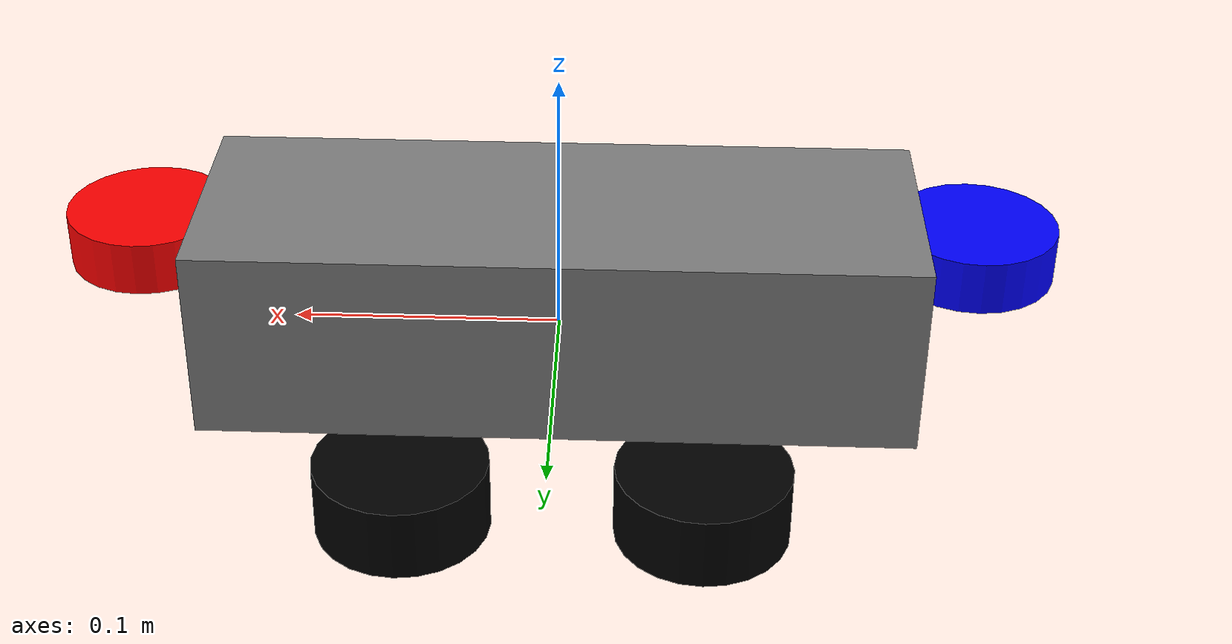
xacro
<?xml version="1.0"?>
<robot xmlns:xacro="http://www.ros.org/wiki/xacro" name="mi_robot">

  <!-- Reusable Properties -->
  <!-- Chassis-->
  <xacro:property name="chassis_xlength" value="0.265"/>
  <xacro:property name="chassis_ylength" value="0.094"/>
  <xacro:property name="chassis_zlength" value="0.073"/>
  <xacro:property name="chassis_mass" value="0.670"/>
  <xacro:property name="chassis_zOfffset" value="0.015"/>

  <!-- Backwards-compatible aliases for older property names -->
  <xacro:property name="chassis_length" value="${chassis_xlength}"/>
  <xacro:property name="chassis_width" value="${chassis_ylength}"/>
  <xacro:property name="chassis_height" value="${chassis_zlength}"/>
  <!-- keep both spellings of zOffset (original had a typo) -->
  <xacro:property name="chassis_zOffset" value="${chassis_zOfffset}"/>

  <!-- Wheels-->
  <xacro:property name="wheel_radius" value="0.0325"/>
  <xacro:property name="wheel_width" value="0.028"/>
  <xacro:property name="wheel_xoffset" value="0.055"/>
  <xacro:property name="wheel_yoffset" value="${chassis_ylength/2 + wheel_width/2}"/>
  <xacro:property name="wheel_mass" value="0.032"/>
  <xacro:property name="wheel_Izz" value="${0.5*wheel_mass*wheel_radius*wheel_radius}"/>
  <xacro:property name="wheel_Ixx" value="${(1.0/12.0)*wheel_mass*(3.0*wheel_radius*wheel_radius + wheel_width*wheel_width)}"/>
  <xacro:property name="wheel_Iyy" value="${wheel_Ixx}"/>
  <xacro:property name="wheel_Ixz" value="0"/>

  <!-- Constants (avoid redefining common symbols) -->

  <!-- Chasis -->
  <link name="base_link">
    <visual>
      <geometry>
        <box size="${chassis_xlength} ${chassis_ylength} ${chassis_zlength}"/>
      </geometry>
      <origin xyz="0 0 ${chassis_zOfffset}" rpy="0 0 0"/>
      <material name="gray"><color rgba="0.5 0.5 0.5 1"/></material>
    </visual>
    <collision>
      <geometry>
        <box size="${chassis_xlength} ${chassis_ylength} ${chassis_zlength}"/>
      </geometry>
      <origin xyz="0 0 ${chassis_zOfffset}" rpy="0 0 0"/>
    </collision>
    <inertial>
      <origin xyz="0 0 ${chassis_zOffset}" rpy="0 0 0"/>
      <mass value="${chassis_mass}"/>
      <inertia
        ixx="${chassis_mass*(chassis_ylength*chassis_ylength + chassis_zlength*chassis_zlength)/12.0}"
        ixy="0"
        ixz="0"
        iyy="${chassis_mass*(chassis_xlength*chassis_xlength + chassis_zlength*chassis_zlength)/12.0}"
        iyz="0"
        izz="${chassis_mass*(chassis_xlength*chassis_xlength + chassis_ylength*chassis_ylength)/12.0}"/>
    </inertial>
  </link>

  <!-- Dummy root link to avoid KDL warning about inertia on root link -->
  <link name="robot_root">
    <!-- intentionally no inertial element here; KDL does not support inertia on the root link -->
  </link>

  <joint name="robot_root_joint" type="fixed">
    <parent link="robot_root"/>
    <child link="base_link"/>
    <origin xyz="0 0 0" rpy="0 0 0"/>
  </joint>

  <!-- Macro for a wheel -->
  <xacro:macro name="wheel_macro" params="wheel_name x y">
    <link name="${wheel_name}_link">
      <visual>
        <geometry>
          <cylinder radius="${wheel_radius}" length="${wheel_width}"/>
        </geometry>
        <material name="black"><color rgba="0 0 0 1"/></material>
      </visual>
      <collision>
        <geometry>
          <cylinder radius="${wheel_radius}" length="${wheel_width}"/>
        </geometry>
      </collision>
      <inertial>
        <origin xyz="0 0 0" rpy="0 0 0"/>
        <mass value="${wheel_mass}"/>
        <inertia
          ixx="${wheel_mass*(3.0*wheel_radius*wheel_radius + wheel_width*wheel_width)/12.0}"
          ixy="0"
          ixz="0"
          iyy="${wheel_mass*(3.0*wheel_radius*wheel_radius + wheel_width*wheel_width)/12.0}"
          iyz="0"
          izz="${0.5*wheel_mass*wheel_radius*wheel_radius}"/>
      </inertial>
    </link>

    <joint name="${wheel_name}_joint" type="continuous">
      <parent link="base_link"/>
      <child link="${wheel_name}_link"/>
      <origin xyz="${x} ${y} ${-chassis_height/2}" rpy="0 0 0"/>
      <axis xyz="0 1 0"/>
    </joint>
  </xacro:macro>

  <!-- Ruedas (invocar macro) -->
  <xacro:wheel_macro wheel_name="wheel_fl" x="${wheel_xoffset}" y="${wheel_yoffset}"/>
  <xacro:wheel_macro wheel_name="wheel_fr" x="${wheel_xoffset}" y="${-wheel_yoffset}"/>
  <xacro:wheel_macro wheel_name="wheel_rl" x="${-wheel_xoffset}" y="${wheel_yoffset}"/>
  <xacro:wheel_macro wheel_name="wheel_rr" x="${-wheel_xoffset}" y="${-wheel_yoffset}"/>

  <!-- Sensor delantero -->
  <link name="sensor_front_link">
    <visual>
      <geometry>
        <cylinder radius="0.03" length="0.02"/>
      </geometry>
      <material name="red"><color rgba="1 0 0 1"/></material>
    </visual>
  </link>
  <joint name="sensor_front_joint" type="fixed">
    <parent link="base_link"/>
    <child link="sensor_front_link"/>
    <origin xyz="${chassis_length/2 + 0.02} 0 ${chassis_height/2}" rpy="0 0 0"/>
  </joint>

  <!-- Sensor trasero -->
  <link name="sensor_back_link">
    <visual>
      <geometry>
        <cylinder radius="0.03" length="0.02"/>
      </geometry>
      <material name="blue"><color rgba="0 0 1 1"/></material>
    </visual>
  </link>
  <joint name="sensor_back_joint" type="fixed">
    <parent link="base_link"/>
    <child link="sensor_back_link"/>
    <origin xyz="-${chassis_length/2 + 0.02} 0 ${chassis_height/2}" rpy="0 0 0"/>
  </joint>

</robot>
